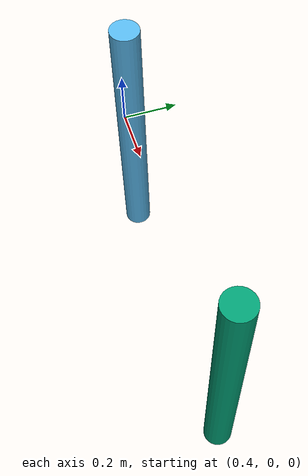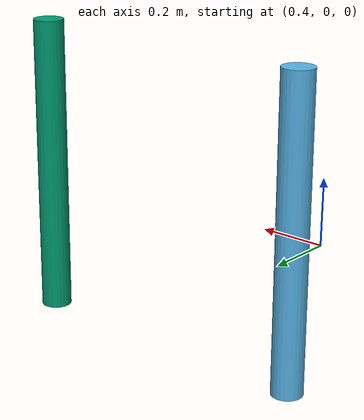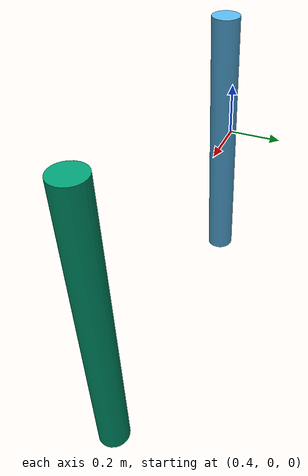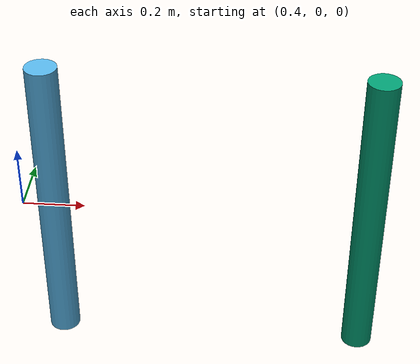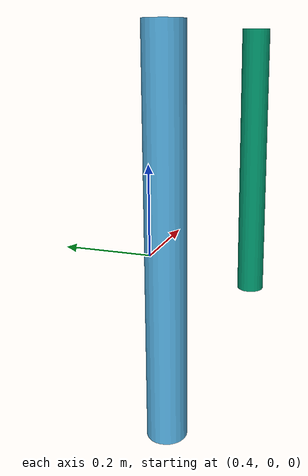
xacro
<?xml version="1.0" ?>
<robot name="2_link" xmlns:xacro="http://www.ros.org/wiki/xacro">

    <xacro:macro name="inertial_cylinder" params="mass length radius *origin">
    <inertial>
            <xacro:insert_block name="origin"/>
            <mass value="${mass}" />
            <inertia ixx="${(1/12) * mass * (3*radius*radius + length*length)}" ixy="0.0" ixz="0.0"
                    iyy="${(1/12) * mass * (3*radius*radius + length*length)}" iyz="0.0"
                    izz="${(1/2) * mass * (radius*radius)}" />
        </inertial>
    </xacro:macro>

    <link name="base_link"></link>
    <joint name="joint1" type="continuous">
         <parent link="base_link"/>
        <child link="link1"/>
        <origin xyz="0 0 0 " rpy="0 0 0"/>
        <axis xyz="0 0 1" />
    </joint>

    <link name="link1">
        <xacro:inertial_cylinder mass="0.1" length="1.0" radius="0.05">
            <origin xyz="0.5 0 0" rpy="0 0 0"/>
        </xacro:inertial_cylinder>
        <visual>
            <origin xyz="0.5 0 0" rpy="0 0 0"/>
            <geometry>
                <cylinder radius="0.05" length="1.0"/>
            </geometry>
        </visual>
        <collision >
            <origin xyz="0.5 0 0" rpy="0 0 0"/>
            <geometry>
              <cylinder length="1.0" radius="0.05"/>
            </geometry>
        </collision>
    </link>

    <joint name="joint2" type="continuous">
        <parent link="link1"/>
        <child link="link2"/>
        <origin xyz="1 0 0" rpy="0 0 0"/>
        <axis xyz="0 0 1" />
    </joint>

     <link name="link2">
        <xacro:inertial_cylinder mass="0.1" length="1.0" radius="0.05">
            <origin xyz="0.5 0 0" rpy="0 0 0"/>
        </xacro:inertial_cylinder>
        <visual>
            <origin xyz="0.5 0 0" rpy="0 0 0"/>
            <geometry>
                <cylinder radius="0.05" length="1.0"/>
            </geometry>
        </visual>
        <collision >
            <origin xyz="0.5 0 0" rpy="0 0 0"/>
            <geometry>
              <cylinder length="1.0" radius="0.05"/>
            </geometry>
        </collision>
    </link>
</robot>
